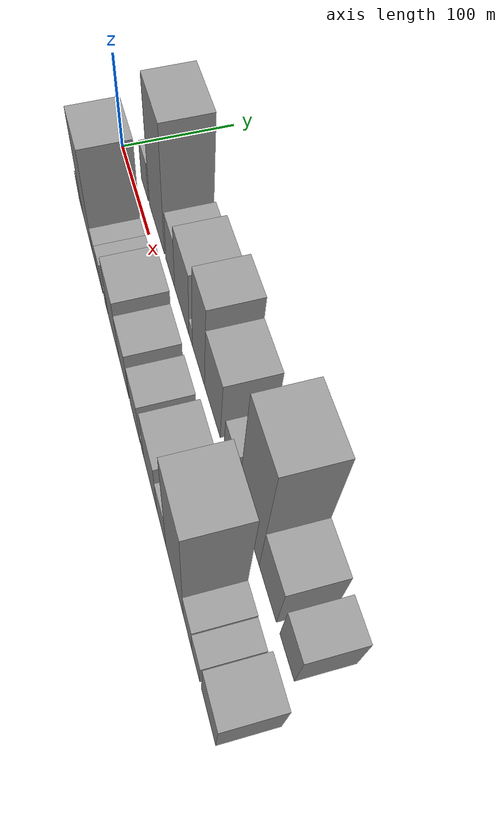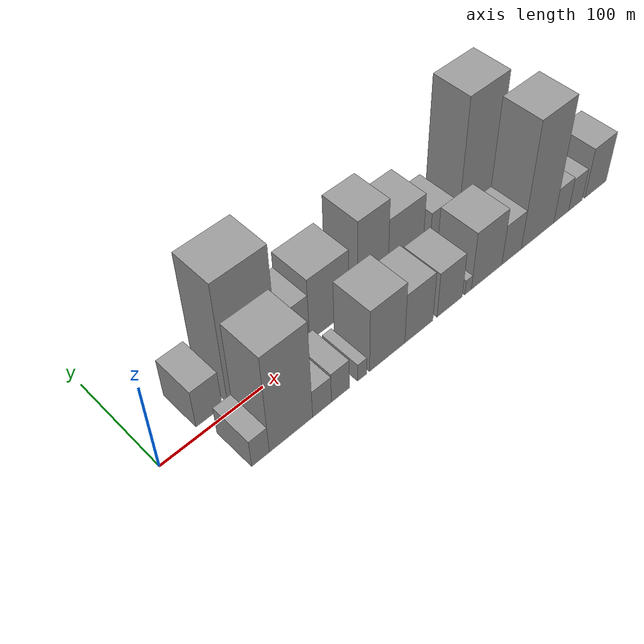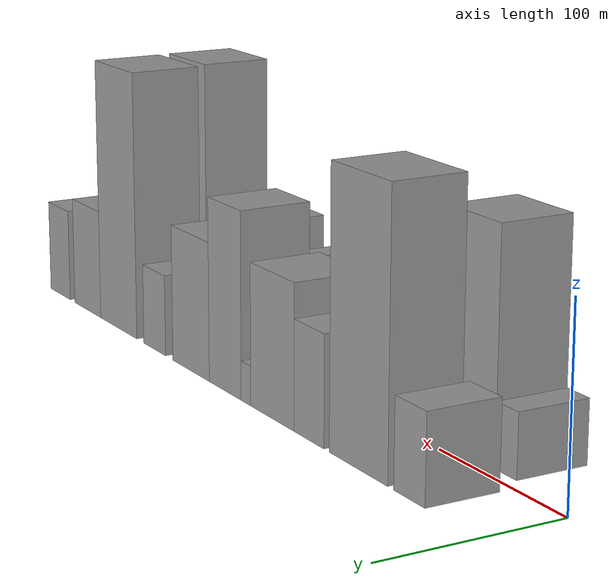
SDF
<sdf version="1.6">
 <world name="default">
  <scene>
   <sky><clouds><speed>12</speed></clouds></sky>
   <ambient>0.4 0.4 0.4 1</ambient>
   <background>0.7 0.7 0.7 1</background>
   <shadows>1</shadows>
  </scene>
  <gravity>0 0 -9.8066</gravity>
  <magnetic_field>6e-06 2.3e-05 -4.2e-05</magnetic_field>
  <physics default="0" name="default_physics" type="ode">
   <ode>
    <solver>
     <type>quick</type>
     <iters>10</iters>
     <sor>1.0</sor>
     <use_dynamic_moi_rescaling>0</use_dynamic_moi_rescaling>
    </solver>
    <constraints>
     <cfm>0</cfm>
     <erp>0.2</erp>
     <contact_max_correcting_vel>100</contact_max_correcting_vel>
     <contact_surface_layer>0.001</contact_surface_layer>
    </constraints>
   </ode>
   <max_step_size>0.004</max_step_size>
   <real_time_factor>1</real_time_factor>
   <real_time_update_rate>250</real_time_update_rate>
  </physics>
  <light name="sun" type="directional">
   <pose>0 0 10 0 0 0</pose>
   <diffuse>0.8 0.8 0.8 1</diffuse>
   <specular>0.2 0.2 0.2 1</specular>
   <attenuation>
    <range>1000</range>
    <constant>0.9</constant>
    <linear>0.01</linear>
    <quadratic>0.001</quadratic>
   </attenuation>
   <direction>-0.5 0.1 -0.9</direction>
  </light>
  <model name="building_1">
   <static>1</static>
   <pose>52.8037 27.5000 0 0.000000 0.000000 1.570796</pose>
   <link name="link">
    <pose>0 0 22.50 0 0 0</pose>
    <collision name="collision"><geometry><box><size>40.0000 25.6074 45.0000</size></box></geometry></collision>
    <visual name="visual">
     <cast_shadows>0</cast_shadows>
     <geometry><box><size>40.0000 25.6074 45.0000</size></box></geometry>
     <material>
      <script>
       <uri>model://grey_wall/materials/scripts</uri>
       <uri>model://grey_wall/materials/textures</uri>
       <name>vrc/grey_wall</name>
      </script>
     </material>
    </visual>
   </link>
  </model>
  <model name="building_2">
   <static>1</static>
   <pose>96.4107 27.5000 0 0.000000 0.000000 1.570796</pose>
   <link name="link">
    <pose>0 0 70.50 0 0 0</pose>
    <collision name="collision"><geometry><box><size>40.0000 51.6066 141.0000</size></box></geometry></collision>
    <visual name="visual">
     <cast_shadows>0</cast_shadows>
     <geometry><box><size>40.0000 51.6066 141.0000</size></box></geometry>
     <material>
      <script>
       <uri>model://grey_wall/materials/scripts</uri>
       <uri>model://grey_wall/materials/textures</uri>
       <name>vrc/grey_wall</name>
      </script>
     </material>
    </visual>
   </link>
  </model>
  <model name="building_3">
   <static>1</static>
   <pose>141.5109 27.5000 0 0.000000 0.000000 1.570796</pose>
   <link name="link">
    <pose>0 0 28.50 0 0 0</pose>
    <collision name="collision"><geometry><box><size>40.0000 28.5938 57.0000</size></box></geometry></collision>
    <visual name="visual">
     <cast_shadows>0</cast_shadows>
     <geometry><box><size>40.0000 28.5938 57.0000</size></box></geometry>
     <material>
      <script>
       <uri>model://grey_wall/materials/scripts</uri>
       <uri>model://grey_wall/materials/textures</uri>
       <name>vrc/grey_wall</name>
      </script>
     </material>
    </visual>
   </link>
  </model>
  <model name="building_4">
   <static>1</static>
   <pose>177.8034 27.5000 0 0.000000 0.000000 1.570796</pose>
   <link name="link">
    <pose>0 0 37.50 0 0 0</pose>
    <collision name="collision"><geometry><box><size>40.0000 43.9912 75.0000</size></box></geometry></collision>
    <visual name="visual">
     <cast_shadows>0</cast_shadows>
     <geometry><box><size>40.0000 43.9912 75.0000</size></box></geometry>
     <material>
      <script>
       <uri>model://grey_wall/materials/scripts</uri>
       <uri>model://grey_wall/materials/textures</uri>
       <name>vrc/grey_wall</name>
      </script>
     </material>
    </visual>
   </link>
  </model>
  <model name="building_5">
   <static>1</static>
   <pose>204.8261 27.5000 0 0.000000 0.000000 1.570796</pose>
   <link name="link">
    <pose>0 0 10.50 0 0 0</pose>
    <collision name="collision"><geometry><box><size>40.0000 10.0542 21.0000</size></box></geometry></collision>
    <visual name="visual">
     <cast_shadows>0</cast_shadows>
     <geometry><box><size>40.0000 10.0542 21.0000</size></box></geometry>
     <material>
      <script>
       <uri>model://grey_wall/materials/scripts</uri>
       <uri>model://grey_wall/materials/textures</uri>
       <name>vrc/grey_wall</name>
      </script>
     </material>
    </visual>
   </link>
  </model>
  <model name="building_6">
   <static>1</static>
   <pose>227.4431 27.5000 0 0.000000 0.000000 1.570796</pose>
   <link name="link">
    <pose>0 0 49.50 0 0 0</pose>
    <collision name="collision"><geometry><box><size>40.0000 35.1797 99.0000</size></box></geometry></collision>
    <visual name="visual">
     <cast_shadows>0</cast_shadows>
     <geometry><box><size>40.0000 35.1797 99.0000</size></box></geometry>
     <material>
      <script>
       <uri>model://grey_wall/materials/scripts</uri>
       <uri>model://grey_wall/materials/textures</uri>
       <name>vrc/grey_wall</name>
      </script>
     </material>
    </visual>
   </link>
  </model>
  <model name="building_7">
   <static>1</static>
   <pose>266.3292 27.5000 0 0.000000 0.000000 1.570796</pose>
   <link name="link">
    <pose>0 0 37.50 0 0 0</pose>
    <collision name="collision"><geometry><box><size>40.0000 42.5926 75.0000</size></box></geometry></collision>
    <visual name="visual">
     <cast_shadows>0</cast_shadows>
     <geometry><box><size>40.0000 42.5926 75.0000</size></box></geometry>
     <material>
      <script>
       <uri>model://grey_wall/materials/scripts</uri>
       <uri>model://grey_wall/materials/textures</uri>
       <name>vrc/grey_wall</name>
      </script>
     </material>
    </visual>
   </link>
  </model>
  <model name="building_8">
   <static>1</static>
   <pose>310.1214 27.5000 0 0.000000 0.000000 1.570796</pose>
   <link name="link">
    <pose>0 0 22.50 0 0 0</pose>
    <collision name="collision"><geometry><box><size>40.0000 26.9918 45.0000</size></box></geometry></collision>
    <visual name="visual">
     <cast_shadows>0</cast_shadows>
     <geometry><box><size>40.0000 26.9918 45.0000</size></box></geometry>
     <material>
      <script>
       <uri>model://grey_wall/materials/scripts</uri>
       <uri>model://grey_wall/materials/textures</uri>
       <name>vrc/grey_wall</name>
      </script>
     </material>
    </visual>
   </link>
  </model>
  <model name="building_9">
   <static>1</static>
   <pose>356.7437 27.5000 0 0.000000 0.000000 1.570796</pose>
   <link name="link">
    <pose>0 0 75.00 0 0 0</pose>
    <collision name="collision"><geometry><box><size>40.0000 48.2527 150.0000</size></box></geometry></collision>
    <visual name="visual">
     <cast_shadows>0</cast_shadows>
     <geometry><box><size>40.0000 48.2527 150.0000</size></box></geometry>
     <material>
      <script>
       <uri>model://grey_wall/materials/scripts</uri>
       <uri>model://grey_wall/materials/textures</uri>
       <name>vrc/grey_wall</name>
      </script>
     </material>
    </visual>
   </link>
  </model>
  <model name="building_10">
   <static>1</static>
   <pose>399.2477 27.5000 0 0.000000 0.000000 1.570796</pose>
   <link name="link">
    <pose>0 0 31.50 0 0 0</pose>
    <collision name="collision"><geometry><box><size>40.0000 36.7554 63.0000</size></box></geometry></collision>
    <visual name="visual">
     <cast_shadows>0</cast_shadows>
     <geometry><box><size>40.0000 36.7554 63.0000</size></box></geometry>
     <material>
      <script>
       <uri>model://grey_wall/materials/scripts</uri>
       <uri>model://grey_wall/materials/textures</uri>
       <name>vrc/grey_wall</name>
      </script>
     </material>
    </visual>
   </link>
  </model>
  <model name="building_11">
   <static>1</static>
   <pose>438.9827 27.5000 0 0.000000 0.000000 1.570796</pose>
   <link name="link">
    <pose>0 0 27.00 0 0 0</pose>
    <collision name="collision"><geometry><box><size>40.0000 28.7146 54.0000</size></box></geometry></collision>
    <visual name="visual">
     <cast_shadows>0</cast_shadows>
     <geometry><box><size>40.0000 28.7146 54.0000</size></box></geometry>
     <material>
      <script>
       <uri>model://grey_wall/materials/scripts</uri>
       <uri>model://grey_wall/materials/textures</uri>
       <name>vrc/grey_wall</name>
      </script>
     </material>
    </visual>
   </link>
  </model>
  <model name="building_12">
   <static>1</static>
   <pose>56.5332 -27.5000 0 0.000000 0.000000 1.570796</pose>
   <link name="link">
    <pose>0 0 16.50 0 0 0</pose>
    <collision name="collision"><geometry><box><size>40.0000 17.0663 33.0000</size></box></geometry></collision>
    <visual name="visual">
     <cast_shadows>0</cast_shadows>
     <geometry><box><size>40.0000 17.0663 33.0000</size></box></geometry>
     <material>
      <script>
       <uri>model://grey_wall/materials/scripts</uri>
       <uri>model://grey_wall/materials/textures</uri>
       <name>vrc/grey_wall</name>
      </script>
     </material>
    </visual>
   </link>
  </model>
  <model name="building_13">
   <static>1</static>
   <pose>86.7587 -27.5000 0 0.000000 0.000000 1.570796</pose>
   <link name="link">
    <pose>0 0 58.50 0 0 0</pose>
    <collision name="collision"><geometry><box><size>40.0000 43.3846 117.0000</size></box></geometry></collision>
    <visual name="visual">
     <cast_shadows>0</cast_shadows>
     <geometry><box><size>40.0000 43.3846 117.0000</size></box></geometry>
     <material>
      <script>
       <uri>model://grey_wall/materials/scripts</uri>
       <uri>model://grey_wall/materials/textures</uri>
       <name>vrc/grey_wall</name>
      </script>
     </material>
    </visual>
   </link>
  </model>
  <model name="building_14">
   <static>1</static>
   <pose>118.2352 -27.5000 0 0.000000 0.000000 1.570796</pose>
   <link name="link">
    <pose>0 0 16.50 0 0 0</pose>
    <collision name="collision"><geometry><box><size>40.0000 19.5684 33.0000</size></box></geometry></collision>
    <visual name="visual">
     <cast_shadows>0</cast_shadows>
     <geometry><box><size>40.0000 19.5684 33.0000</size></box></geometry>
     <material>
      <script>
       <uri>model://grey_wall/materials/scripts</uri>
       <uri>model://grey_wall/materials/textures</uri>
       <name>vrc/grey_wall</name>
      </script>
     </material>
    </visual>
   </link>
  </model>
  <model name="building_15">
   <static>1</static>
   <pose>137.5654 -27.5000 0 0.000000 0.000000 1.570796</pose>
   <link name="link">
    <pose>0 0 18.00 0 0 0</pose>
    <collision name="collision"><geometry><box><size>40.0000 19.0920 36.0000</size></box></geometry></collision>
    <visual name="visual">
     <cast_shadows>0</cast_shadows>
     <geometry><box><size>40.0000 19.0920 36.0000</size></box></geometry>
     <material>
      <script>
       <uri>model://grey_wall/materials/scripts</uri>
       <uri>model://grey_wall/materials/textures</uri>
       <name>vrc/grey_wall</name>
      </script>
     </material>
    </visual>
   </link>
  </model>
  <model name="building_16">
   <static>1</static>
   <pose>161.0348 -27.5000 0 0.000000 0.000000 1.570796</pose>
   <link name="link">
    <pose>0 0 10.50 0 0 0</pose>
    <collision name="collision"><geometry><box><size>40.0000 9.8466 21.0000</size></box></geometry></collision>
    <visual name="visual">
     <cast_shadows>0</cast_shadows>
     <geometry><box><size>40.0000 9.8466 21.0000</size></box></geometry>
     <material>
      <script>
       <uri>model://grey_wall/materials/scripts</uri>
       <uri>model://grey_wall/materials/textures</uri>
       <name>vrc/grey_wall</name>
      </script>
     </material>
    </visual>
   </link>
  </model>
  <model name="building_17">
   <static>1</static>
   <pose>188.8325 -27.5000 0 0.000000 0.000000 1.570796</pose>
   <link name="link">
    <pose>0 0 37.50 0 0 0</pose>
    <collision name="collision"><geometry><box><size>40.0000 39.7489 75.0000</size></box></geometry></collision>
    <visual name="visual">
     <cast_shadows>0</cast_shadows>
     <geometry><box><size>40.0000 39.7489 75.0000</size></box></geometry>
     <material>
      <script>
       <uri>model://grey_wall/materials/scripts</uri>
       <uri>model://grey_wall/materials/textures</uri>
       <name>vrc/grey_wall</name>
      </script>
     </material>
    </visual>
   </link>
  </model>
  <model name="building_18">
   <static>1</static>
   <pose>225.2265 -27.5000 0 0.000000 0.000000 1.570796</pose>
   <link name="link">
    <pose>0 0 30.00 0 0 0</pose>
    <collision name="collision"><geometry><box><size>40.0000 33.0391 60.0000</size></box></geometry></collision>
    <visual name="visual">
     <cast_shadows>0</cast_shadows>
     <geometry><box><size>40.0000 33.0391 60.0000</size></box></geometry>
     <material>
      <script>
       <uri>model://grey_wall/materials/scripts</uri>
       <uri>model://grey_wall/materials/textures</uri>
       <name>vrc/grey_wall</name>
      </script>
     </material>
    </visual>
   </link>
  </model>
  <model name="building_19">
   <static>1</static>
   <pose>262.1121 -27.5000 0 0.000000 0.000000 1.570796</pose>
   <link name="link">
    <pose>0 0 27.00 0 0 0</pose>
    <collision name="collision"><geometry><box><size>40.0000 30.7320 54.0000</size></box></geometry></collision>
    <visual name="visual">
     <cast_shadows>0</cast_shadows>
     <geometry><box><size>40.0000 30.7320 54.0000</size></box></geometry>
     <material>
      <script>
       <uri>model://grey_wall/materials/scripts</uri>
       <uri>model://grey_wall/materials/textures</uri>
       <name>vrc/grey_wall</name>
      </script>
     </material>
    </visual>
   </link>
  </model>
  <model name="building_20">
   <static>1</static>
   <pose>284.6860 -27.5000 0 0.000000 0.000000 1.570796</pose>
   <link name="link">
    <pose>0 0 9.00 0 0 0</pose>
    <collision name="collision"><geometry><box><size>40.0000 8.4159 18.0000</size></box></geometry></collision>
    <visual name="visual">
     <cast_shadows>0</cast_shadows>
     <geometry><box><size>40.0000 8.4159 18.0000</size></box></geometry>
     <material>
      <script>
       <uri>model://grey_wall/materials/scripts</uri>
       <uri>model://grey_wall/materials/textures</uri>
       <name>vrc/grey_wall</name>
      </script>
     </material>
    </visual>
   </link>
  </model>
  <model name="building_21">
   <static>1</static>
   <pose>308.4489 -27.5000 0 0.000000 0.000000 1.570796</pose>
   <link name="link">
    <pose>0 0 34.50 0 0 0</pose>
    <collision name="collision"><geometry><box><size>40.0000 39.1099 69.0000</size></box></geometry></collision>
    <visual name="visual">
     <cast_shadows>0</cast_shadows>
     <geometry><box><size>40.0000 39.1099 69.0000</size></box></geometry>
     <material>
      <script>
       <uri>model://grey_wall/materials/scripts</uri>
       <uri>model://grey_wall/materials/textures</uri>
       <name>vrc/grey_wall</name>
      </script>
     </material>
    </visual>
   </link>
  </model>
  <model name="building_22">
   <static>1</static>
   <pose>340.9039 -27.5000 0 0.000000 0.000000 1.570796</pose>
   <link name="link">
    <pose>0 0 24.00 0 0 0</pose>
    <collision name="collision"><geometry><box><size>40.0000 25.8001 48.0000</size></box></geometry></collision>
    <visual name="visual">
     <cast_shadows>0</cast_shadows>
     <geometry><box><size>40.0000 25.8001 48.0000</size></box></geometry>
     <material>
      <script>
       <uri>model://grey_wall/materials/scripts</uri>
       <uri>model://grey_wall/materials/textures</uri>
       <name>vrc/grey_wall</name>
      </script>
     </material>
    </visual>
   </link>
  </model>
  <model name="building_23">
   <static>1</static>
   <pose>376.1191 -27.5000 0 0.000000 0.000000 1.570796</pose>
   <link name="link">
    <pose>0 0 73.50 0 0 0</pose>
    <collision name="collision"><geometry><box><size>40.0000 44.6304 147.0000</size></box></geometry></collision>
    <visual name="visual">
     <cast_shadows>0</cast_shadows>
     <geometry><box><size>40.0000 44.6304 147.0000</size></box></geometry>
     <material>
      <script>
       <uri>model://grey_wall/materials/scripts</uri>
       <uri>model://grey_wall/materials/textures</uri>
       <name>vrc/grey_wall</name>
      </script>
     </material>
    </visual>
   </link>
  </model>
  <model name="building_24">
   <static>1</static>
   <pose>409.0027 -27.5000 0 0.000000 0.000000 1.570796</pose>
   <link name="link">
    <pose>0 0 21.00 0 0 0</pose>
    <collision name="collision"><geometry><box><size>40.0000 21.1367 42.0000</size></box></geometry></collision>
    <visual name="visual">
     <cast_shadows>0</cast_shadows>
     <geometry><box><size>40.0000 21.1367 42.0000</size></box></geometry>
     <material>
      <script>
       <uri>model://grey_wall/materials/scripts</uri>
       <uri>model://grey_wall/materials/textures</uri>
       <name>vrc/grey_wall</name>
      </script>
     </material>
    </visual>
   </link>
  </model>
  <model name="building_25">
   <static>1</static>
   <pose>429.3961 -27.5000 0 0.000000 0.000000 1.570796</pose>
   <link name="link">
    <pose>0 0 19.50 0 0 0</pose>
    <collision name="collision"><geometry><box><size>40.0000 19.6503 39.0000</size></box></geometry></collision>
    <visual name="visual">
     <cast_shadows>0</cast_shadows>
     <geometry><box><size>40.0000 19.6503 39.0000</size></box></geometry>
     <material>
      <script>
       <uri>model://grey_wall/materials/scripts</uri>
       <uri>model://grey_wall/materials/textures</uri>
       <name>vrc/grey_wall</name>
      </script>
     </material>
    </visual>
   </link>
  </model>
  <model name="building_26">
   <static>1</static>
   <pose>459.1714 -27.5000 0 0.000000 0.000000 1.570796</pose>
   <link name="link">
    <pose>0 0 30.00 0 0 0</pose>
    <collision name="collision"><geometry><box><size>40.0000 31.9001 60.0000</size></box></geometry></collision>
    <visual name="visual">
     <cast_shadows>0</cast_shadows>
     <geometry><box><size>40.0000 31.9001 60.0000</size></box></geometry>
     <material>
      <script>
       <uri>model://grey_wall/materials/scripts</uri>
       <uri>model://grey_wall/materials/textures</uri>
       <name>vrc/grey_wall</name>
      </script>
     </material>
    </visual>
   </link>
  </model>
 </world>
</sdf>
